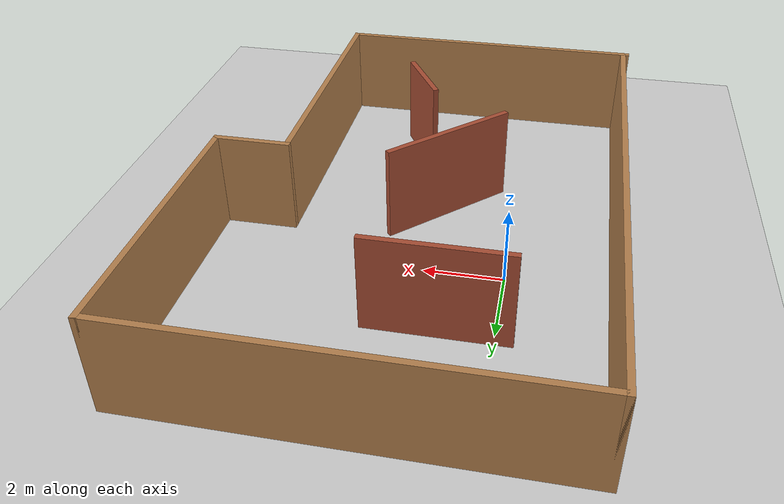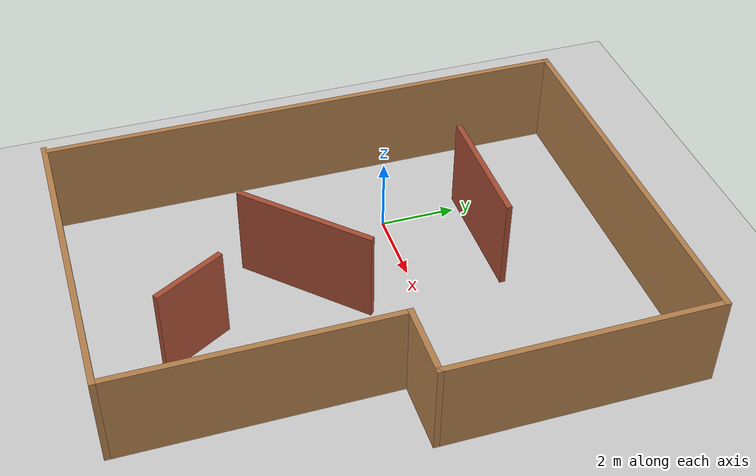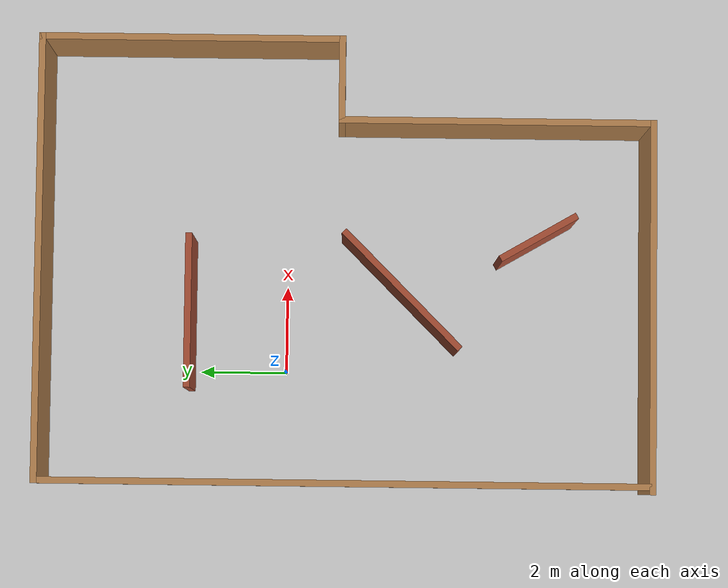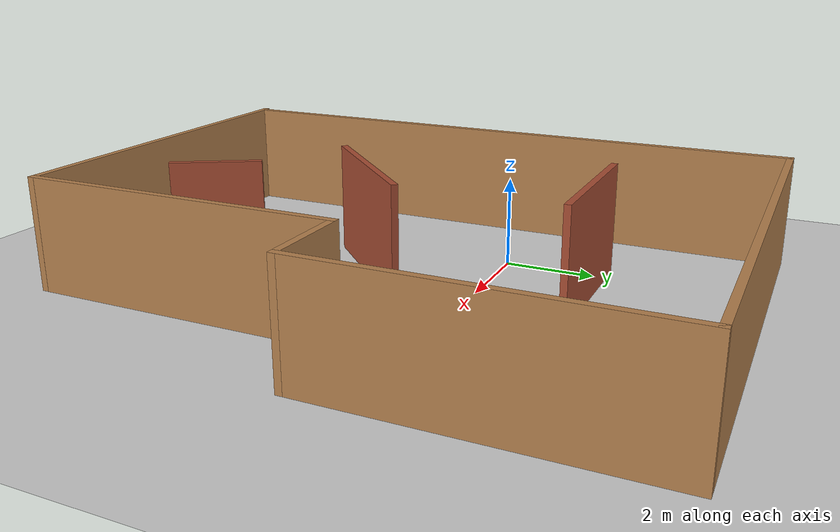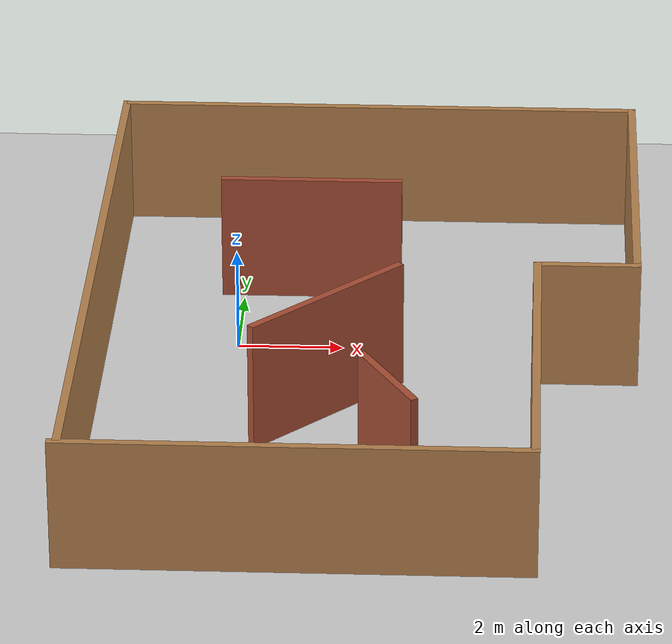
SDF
<sdf version="1.7">
 <world name="default">
  <light name="sun" type="directional">
   <pose>0 0 10 0 -0 0</pose>
   <diffuse>0.8 0.8 0.8 1</diffuse>
   <specular>0.2 0.2 0.2 1</specular>
   <attenuation>
    <range>1000</range>
    <constant>0.9</constant>
    <linear>0.01</linear>
    <quadratic>0.001</quadratic>
   </attenuation>
   <direction>-0.5 0.1 -0.9</direction>
   <spot><inner_angle>0</inner_angle><outer_angle>0</outer_angle><falloff>0</falloff></spot>
  </light>
  <model name="ground_plane">
   <static>1</static>
   <link name="link">
    <collision name="collision">
     <geometry><plane><normal>0 0 1</normal><size>100 100</size></plane></geometry>
     <surface>
      <contact><collide_bitmask>65535</collide_bitmask></contact>
      <friction><ode><mu>100</mu><mu2>50</mu2></ode></friction>
     </surface>
    </collision>
    <visual name="visual">
     <cast_shadows>0</cast_shadows>
     <geometry><plane><normal>0 0 1</normal><size>100 100</size></plane></geometry>
     <material>
      <script><uri>file://media/materials/scripts/gazebo.material</uri><name>Gazebo/Grey</name></script>
     </material>
    </visual>
   </link>
  </model>
  <gravity>0 0 -9.8</gravity>
  <magnetic_field>6e-06 2.3e-05 -4.2e-05</magnetic_field>
  <atmosphere type="adiabatic"/>
  <physics type="ode">
   <max_step_size>0.001</max_step_size>
   <real_time_factor>1</real_time_factor>
   <real_time_update_rate>1000</real_time_update_rate>
  </physics>
  <scene><ambient>0.4 0.4 0.4 1</ambient><background>0.7 0.7 0.7 1</background><shadows>1</shadows></scene>
  <spherical_coordinates>
   <surface_model>EARTH_WGS84</surface_model>
   <latitude_deg>0</latitude_deg>
   <longitude_deg>0</longitude_deg>
   <elevation>0</elevation>
   <heading_deg>0</heading_deg>
  </spherical_coordinates>
  <model name="room2">
   <pose>2.42951 -1.34866 0 0 -0 0</pose>
   <link name="Wall_10">
    <collision name="Wall_10_Collision">
     <geometry><box><size>3.5 0.15 2.5</size></box></geometry>
     <pose>0 0 1.25 0 -0 0</pose>
    </collision>
    <visual name="Wall_10_Visual">
     <pose>0 0 1.25 0 -0 0</pose>
     <geometry><box><size>3.5 0.15 2.5</size></box></geometry>
     <material>
      <script><uri>file://media/materials/scripts/gazebo.material</uri><name>Gazebo/Bricks</name></script>
      <ambient>1 1 1 1</ambient>
     </material>
     <meta><layer>0</layer></meta>
    </visual>
    <pose>-1.12571 3.56407 0 0 -0 3.14159</pose>
   </link>
   <link name="Wall_12">
    <collision name="Wall_12_Collision">
     <geometry><box><size>3.75 0.15 2.5</size></box></geometry>
     <pose>0 0 1.25 0 -0 0</pose>
    </collision>
    <visual name="Wall_12_Visual">
     <pose>0 0 1.25 0 -0 0</pose>
     <geometry><box><size>3.75 0.15 2.5</size></box></geometry>
     <material>
      <script><uri>file://media/materials/scripts/gazebo.material</uri><name>Gazebo/Bricks</name></script>
      <ambient>1 1 1 1</ambient>
     </material>
     <meta><layer>0</layer></meta>
    </visual>
    <pose>-0.610071 -1.28273 0 0 -0 0.785398</pose>
   </link>
   <link name="Wall_14">
    <collision name="Wall_14_Collision">
     <geometry><box><size>2 0.15 2.5</size></box></geometry>
     <pose>0 0 1.25 0 -0 0</pose>
    </collision>
    <visual name="Wall_14_Visual">
     <pose>0 0 1.25 0 -0 0</pose>
     <geometry><box><size>2 0.15 2.5</size></box></geometry>
     <material>
      <script><uri>file://media/materials/scripts/gazebo.material</uri><name>Gazebo/Bricks</name></script>
      <ambient>1 1 1 1</ambient>
     </material>
     <meta><layer>0</layer></meta>
    </visual>
    <pose>0.619504 -4.37653 0 0 -0 -1.0472</pose>
   </link>
   <link name="Wall_3">
    <collision name="Wall_3_Collision">
     <geometry><box><size>14 0.15 2.5</size></box></geometry>
     <pose>0 0 1.25 0 -0 0</pose>
    </collision>
    <visual name="Wall_3_Visual">
     <pose>0 0 1.25 0 -0 0</pose>
     <geometry><box><size>14 0.15 2.5</size></box></geometry>
     <material>
      <script><uri>file://media/materials/scripts/gazebo.material</uri><name>Gazebo/Wood</name></script>
      <ambient>1 1 1 1</ambient>
     </material>
     <meta><layer>0</layer></meta>
    </visual>
    <pose>-5 0.05 0 0 -0 1.5708</pose>
   </link>
   <link name="Wall_4">
    <collision name="Wall_4_Collision">
     <geometry><box><size>10.25 0.15 2.5</size></box></geometry>
     <pose>0 0 1.25 0 -0 0</pose>
    </collision>
    <visual name="Wall_4_Visual">
     <pose>0 0 1.25 0 -0 0</pose>
     <geometry><box><size>10.25 0.15 2.5</size></box></geometry>
     <material>
      <script><uri>file://media/materials/scripts/gazebo.material</uri><name>Gazebo/Wood</name></script>
      <ambient>1 1 1 1</ambient>
     </material>
     <meta><layer>0</layer></meta>
    </visual>
    <pose>0.05 6.975 0 0 -0 0</pose>
   </link>
   <link name="Wall_5">
    <collision name="Wall_5_Collision">
     <geometry><box><size>7 0.15 2.5</size></box></geometry>
     <pose>0 0 1.25 0 -0 0</pose>
    </collision>
    <visual name="Wall_5_Visual">
     <pose>0 0 1.25 0 -0 0</pose>
     <geometry><box><size>7 0.15 2.5</size></box></geometry>
     <material>
      <script><uri>file://media/materials/scripts/gazebo.material</uri><name>Gazebo/Wood</name></script>
      <ambient>1 1 1 1</ambient>
     </material>
     <meta><layer>0</layer></meta>
    </visual>
    <pose>5.1 3.55 0 0 -0 -1.5708</pose>
   </link>
   <link name="Wall_6">
    <collision name="Wall_6_Collision">
     <geometry><box><size>2 0.15 2.5</size></box></geometry>
     <pose>0 0 1.25 0 -0 0</pose>
    </collision>
    <visual name="Wall_6_Visual">
     <pose>0 0 1.25 0 -0 0</pose>
     <geometry><box><size>2 0.15 2.5</size></box></geometry>
     <material>
      <script><uri>file://media/materials/scripts/gazebo.material</uri><name>Gazebo/Wood</name></script>
      <ambient>1 1 1 1</ambient>
     </material>
     <meta><layer>0</layer></meta>
    </visual>
    <pose>4.175 0.125 0 0 -0 3.14159</pose>
   </link>
   <link name="Wall_7">
    <collision name="Wall_7_Collision">
     <geometry><box><size>7.25 0.15 2.5</size></box></geometry>
     <pose>0 0 1.25 0 -0 0</pose>
    </collision>
    <visual name="Wall_7_Visual">
     <pose>0 0 1.25 0 -0 0</pose>
     <geometry><box><size>7.25 0.15 2.5</size></box></geometry>
     <material>
      <script><uri>file://media/materials/scripts/gazebo.material</uri><name>Gazebo/Wood</name></script>
      <ambient>1 1 1 1</ambient>
     </material>
     <meta><layer>0</layer></meta>
    </visual>
    <pose>3.25 -3.425 0 0 -0 -1.5708</pose>
   </link>
   <link name="Wall_8">
    <collision name="Wall_8_Collision">
     <geometry><box><size>8.5 0.15 2.5</size></box></geometry>
     <pose>0 0 1.25 0 -0 0</pose>
    </collision>
    <visual name="Wall_8_Visual">
     <pose>0 0 1.25 0 -0 0</pose>
     <geometry><box><size>8.5 0.15 2.5</size></box></geometry>
     <material>
      <script><uri>file://media/materials/scripts/gazebo.material</uri><name>Gazebo/Wood</name></script>
      <ambient>1 1 1 1</ambient>
     </material>
     <meta><layer>0</layer></meta>
    </visual>
    <pose>-0.925 -6.975 0 0 -0 3.14159</pose>
   </link>
   <static>1</static>
  </model>
 </world>
</sdf>
